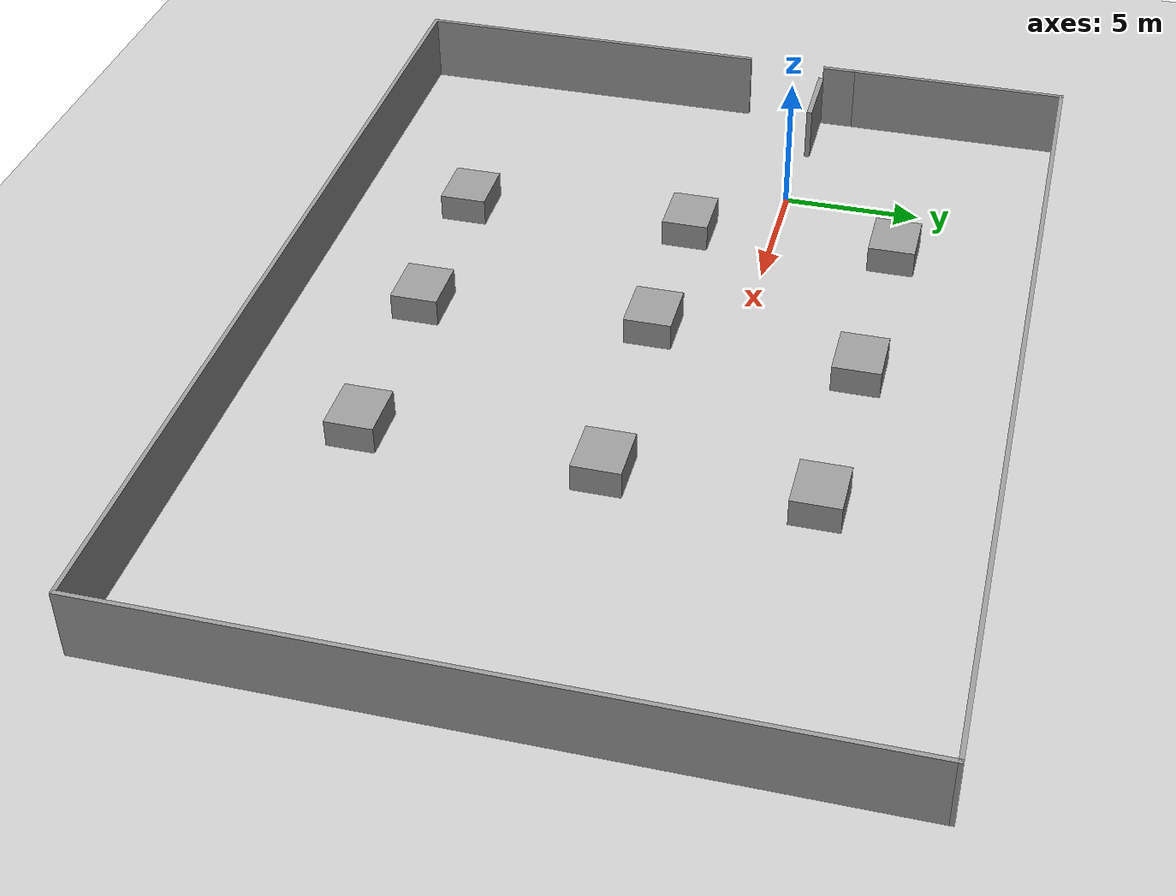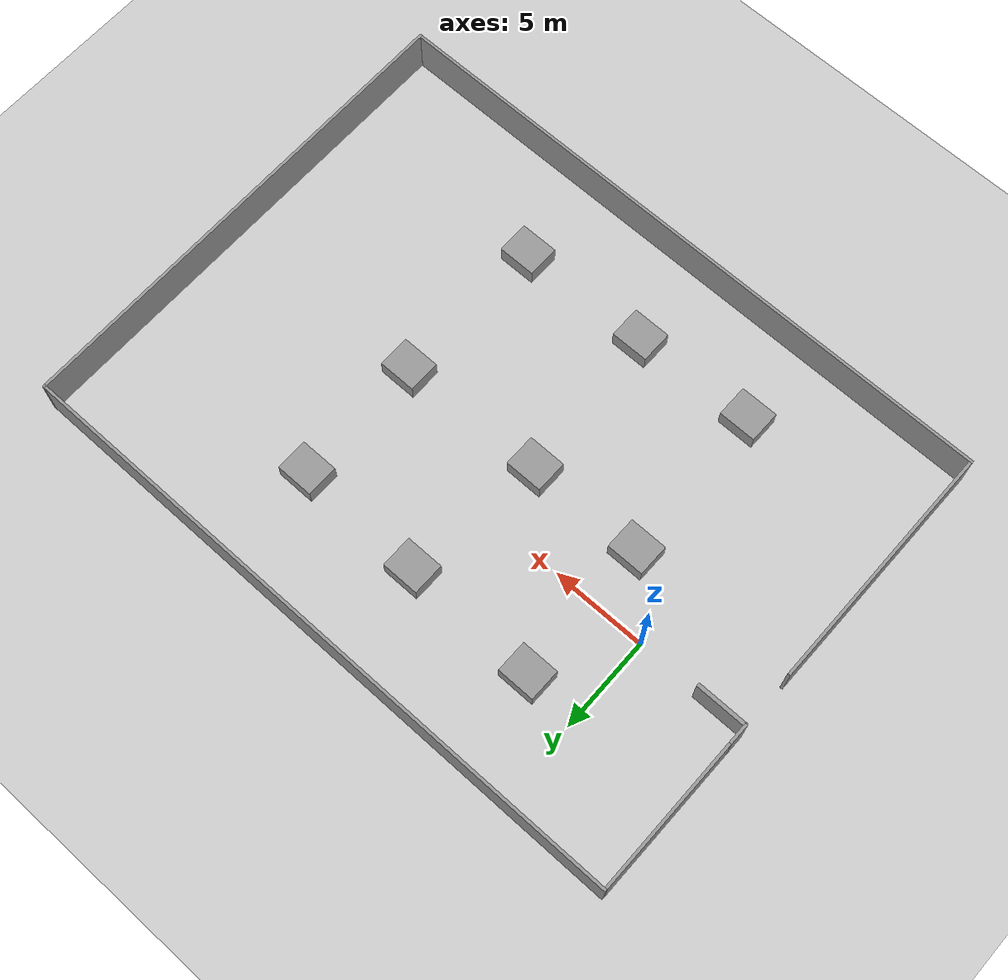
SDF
<sdf version="1.7">
 <world name="default">
  <light name="sun" type="directional">
   <pose>0 0 10 0 -0 0</pose>
   <diffuse>0.8 0.8 0.8 1</diffuse>
   <specular>0.2 0.2 0.2 1</specular>
   <attenuation>
    <range>1000</range>
    <constant>0.9</constant>
    <linear>0.01</linear>
    <quadratic>0.001</quadratic>
   </attenuation>
   <direction>-0.5 0.1 -0.9</direction>
   <spot><inner_angle>0</inner_angle><outer_angle>0</outer_angle><falloff>0</falloff></spot>
  </light>
  <model name="ground_plane">
   <static>1</static>
   <link name="link">
    <collision name="collision">
     <geometry><plane><normal>0 0 1</normal><size>100 100</size></plane></geometry>
     <surface>
      <contact><collide_bitmask>65535</collide_bitmask></contact>
      <friction><ode><mu>100</mu><mu2>50</mu2></ode></friction>
     </surface>
    </collision>
    <visual name="visual">
     <cast_shadows>0</cast_shadows>
     <geometry><plane><normal>0 0 1</normal><size>100 100</size></plane></geometry>
     <material>
      <script><uri>file://media/materials/scripts/gazebo.material</uri><name>Gazebo/Grey</name></script>
     </material>
    </visual>
   </link>
  </model>
  <gravity>0 0 -9.8</gravity>
  <magnetic_field>6e-06 2.3e-05 -4.2e-05</magnetic_field>
  <atmosphere type="adiabatic"/>
  <physics type="ode">
   <max_step_size>0.001</max_step_size>
   <real_time_factor>1</real_time_factor>
   <real_time_update_rate>1000</real_time_update_rate>
  </physics>
  <scene><ambient>0.4 0.4 0.4 1</ambient><background>0.7 0.7 0.7 1</background><shadows>1</shadows></scene>
  <audio><device>default</device></audio>
  <spherical_coordinates>
   <surface_model>EARTH_WGS84</surface_model>
   <latitude_deg>0</latitude_deg>
   <longitude_deg>0</longitude_deg>
   <elevation>0</elevation>
   <heading_deg>0</heading_deg>
  </spherical_coordinates>
  <model name="sample_room">
   <pose>11.0119 -3.11246 0 0 -0 0</pose>
   <link name="Door_0">
    <collision name="Door_0_Collision">
     <geometry><box><size>2.717 0.2 2</size></box></geometry>
     <pose>0 0 1 0 -0 0</pose>
    </collision>
    <visual name="Door_0_Visual">
     <pose>0 0 1 0 -0 0</pose>
     <geometry><box><size>2.717 0.2 2</size></box></geometry>
     <material>
      <script><uri>file://media/materials/scripts/gazebo.material</uri><name>Gazebo/Grey</name></script>
     </material>
    </visual>
    <pose>-15.5808 3.32304 0 0 -0 0</pose>
   </link>
   <link name="Wall_12">
    <collision name="Wall_12_Collision">
     <geometry><box><size>13.25 0.15 2.5</size></box></geometry>
     <pose>0 0 1.25 0 -0 0</pose>
    </collision>
    <visual name="Wall_12_Visual">
     <pose>0 0 1.25 0 -0 0</pose>
     <geometry><box><size>13.25 0.15 2.5</size></box></geometry>
     <material>
      <script><uri>file://media/materials/scripts/gazebo.material</uri><name>Gazebo/Grey</name></script>
      <ambient>1 1 1 1</ambient>
     </material>
     <meta><layer>0</layer></meta>
    </visual>
    <pose>-16.925 -6.125 0 0 -0 -1.5708</pose>
   </link>
   <link name="Wall_13">
    <collision name="Wall_13_Collision">
     <geometry><box><size>34 0.15 2.5</size></box></geometry>
     <pose>0 0 1.25 0 -0 0</pose>
    </collision>
    <visual name="Wall_13_Visual">
     <pose>0 0 1.25 0 -0 0</pose>
     <geometry><box><size>34 0.15 2.5</size></box></geometry>
     <material>
      <script><uri>file://media/materials/scripts/gazebo.material</uri><name>Gazebo/Grey</name></script>
      <ambient>1 1 1 1</ambient>
     </material>
     <meta><layer>0</layer></meta>
    </visual>
    <pose>-1e-06 -12.675 0 0 -0 0</pose>
   </link>
   <link name="Wall_14">
    <collision name="Wall_14_Collision">
     <geometry><box><size>25.5 0.15 2.5</size></box></geometry>
     <pose>0 0 1.25 0 -0 0</pose>
    </collision>
    <visual name="Wall_14_Visual">
     <pose>0 0 1.25 0 -0 0</pose>
     <geometry><box><size>25.5 0.15 2.5</size></box></geometry>
     <material>
      <script><uri>file://media/materials/scripts/gazebo.material</uri><name>Gazebo/Grey</name></script>
      <ambient>1 1 1 1</ambient>
     </material>
     <meta><layer>0</layer></meta>
    </visual>
    <pose>16.925 0 0 0 -0 1.5708</pose>
   </link>
   <link name="Wall_15">
    <collision name="Wall_15_Collision">
     <geometry><box><size>34 0.15 2.5</size></box></geometry>
     <pose>0 0 1.25 0 -0 0</pose>
    </collision>
    <visual name="Wall_15_Visual">
     <pose>0 0 1.25 0 -0 0</pose>
     <geometry><box><size>34 0.15 2.5</size></box></geometry>
     <material>
      <script><uri>file://media/materials/scripts/gazebo.material</uri><name>Gazebo/Grey</name></script>
      <ambient>1 1 1 1</ambient>
     </material>
     <meta><layer>0</layer></meta>
    </visual>
    <pose>-1e-06 12.675 0 0 -0 3.14159</pose>
   </link>
   <link name="Wall_16">
    <collision name="Wall_16_Collision">
     <geometry><box><size>8.25 0.15 2.5</size></box></geometry>
     <pose>0 0 1.25 0 -0 0</pose>
    </collision>
    <visual name="Wall_16_Visual">
     <pose>0 0 1.25 0 -0 0</pose>
     <geometry><box><size>8.25 0.15 2.5</size></box></geometry>
     <material>
      <script><uri>file://media/materials/scripts/gazebo.material</uri><name>Gazebo/Grey</name></script>
      <ambient>1 1 1 1</ambient>
     </material>
     <meta><layer>0</layer></meta>
    </visual>
    <pose>-16.925 8.625 0 0 -0 -1.5708</pose>
   </link>
   <link name="Wall_17">
    <collision name="Wall_17_Collision">
     <geometry><box><size>1.25 0.15 2.5</size></box></geometry>
     <pose>0 0 1.25 0 -0 0</pose>
    </collision>
    <visual name="Wall_17_Visual">
     <pose>0 0 1.25 0 -0 0</pose>
     <geometry><box><size>1.25 0.15 2.5</size></box></geometry>
     <material>
      <script><uri>file://media/materials/scripts/gazebo.material</uri><name>Gazebo/Grey</name></script>
      <ambient>1 1 1 1</ambient>
     </material>
     <meta><layer>0</layer></meta>
    </visual>
    <pose>-16.925 4.025 0 0 -0 -1.5708</pose>
   </link>
   <static>1</static>
  </model>
  <model name="sample_room_0">
   <link name="link_0">
    <inertial>
     <mass>3.34182</mass>
     <inertia><ixx>1.06479</ixx><ixy>0</ixy><ixz>0</ixz><iyy>1.37995</iyy><iyz>0</iyz><izz>1.88777</izz></inertia>
    </inertial>
    <pose>-6.45144 -8.16118 0 0 -0 0</pose>
    <visual name="visual">
     <geometry><box><size>1.98877 1.68033 1</size></box></geometry>
     <material>
      <lighting>1</lighting>
      <script><uri>file://media/materials/scripts/gazebo.material</uri><name>Gazebo/Grey</name></script>
      <shader type="pixel"/>
     </material>
    </visual>
    <collision name="collision">
     <geometry><box><size>1.98877 1.68033 1</size></box></geometry>
     <surface>
      <friction>
       <ode><mu>1</mu><mu2>1</mu2><fdir1>0 0 0</fdir1><slip1>0</slip1><slip2>0</slip2></ode>
       <torsional>
        <coefficient>1</coefficient>
        <patch_radius>0</patch_radius>
        <surface_radius>0</surface_radius>
        <use_patch_radius>1</use_patch_radius>
        <ode><slip>0</slip></ode>
       </torsional>
      </friction>
      <bounce><restitution_coefficient>0</restitution_coefficient><threshold>1e+06</threshold></bounce>
      <contact>
       <collide_without_contact>0</collide_without_contact>
       <collide_without_contact_bitmask>1</collide_without_contact_bitmask>
       <collide_bitmask>1</collide_bitmask>
       <ode>
        <soft_cfm>0</soft_cfm>
        <soft_erp>0.2</soft_erp>
        <kp>1e+13</kp>
        <kd>1</kd>
        <max_vel>0.01</max_vel>
        <min_depth>0</min_depth>
       </ode>
       <bullet>
        <split_impulse>1</split_impulse>
        <split_impulse_penetration_threshold>-0.01</split_impulse_penetration_threshold>
        <soft_cfm>0</soft_cfm>
        <soft_erp>0.2</soft_erp>
        <kp>1e+13</kp>
        <kd>1</kd>
       </bullet>
      </contact>
     </surface>
    </collision>
   </link>
   <link name="link_0_clone">
    <inertial>
     <mass>3.34182</mass>
     <inertia><ixx>1.06479</ixx><ixy>0</ixy><ixz>0</ixz><iyy>1.37995</iyy><iyz>0</iyz><izz>1.88777</izz></inertia>
    </inertial>
    <pose>-0.111788 -7.9194 0 0 -0 0</pose>
    <visual name="visual">
     <geometry><box><size>1.98877 1.68033 1</size></box></geometry>
     <material>
      <lighting>1</lighting>
      <script><uri>file://media/materials/scripts/gazebo.material</uri><name>Gazebo/Grey</name></script>
      <shader type="pixel"/>
     </material>
    </visual>
    <collision name="collision">
     <geometry><box><size>1.98877 1.68033 1</size></box></geometry>
     <surface>
      <friction>
       <ode><mu>1</mu><mu2>1</mu2><fdir1>0 0 0</fdir1><slip1>0</slip1><slip2>0</slip2></ode>
       <torsional>
        <coefficient>1</coefficient>
        <patch_radius>0</patch_radius>
        <surface_radius>0</surface_radius>
        <use_patch_radius>1</use_patch_radius>
        <ode><slip>0</slip></ode>
       </torsional>
      </friction>
      <bounce><restitution_coefficient>0</restitution_coefficient><threshold>1e+06</threshold></bounce>
      <contact>
       <collide_without_contact>0</collide_without_contact>
       <collide_without_contact_bitmask>1</collide_without_contact_bitmask>
       <collide_bitmask>1</collide_bitmask>
       <ode>
        <soft_cfm>0</soft_cfm>
        <soft_erp>0.2</soft_erp>
        <kp>1e+13</kp>
        <kd>1</kd>
        <max_vel>0.01</max_vel>
        <min_depth>0</min_depth>
       </ode>
       <bullet>
        <split_impulse>1</split_impulse>
        <split_impulse_penetration_threshold>-0.01</split_impulse_penetration_threshold>
        <soft_cfm>0</soft_cfm>
        <soft_erp>0.2</soft_erp>
        <kp>1e+13</kp>
        <kd>1</kd>
       </bullet>
      </contact>
     </surface>
    </collision>
   </link>
   <link name="link_0_clone_0">
    <inertial>
     <mass>3.34182</mass>
     <inertia><ixx>1.06479</ixx><ixy>0</ixy><ixz>0</ixz><iyy>1.37995</iyy><iyz>0</iyz><izz>1.88777</izz></inertia>
    </inertial>
    <pose>6.83263 -7.7383 0 0 -0 0</pose>
    <visual name="visual">
     <geometry><box><size>1.98877 1.68033 1</size></box></geometry>
     <material>
      <lighting>1</lighting>
      <script><uri>file://media/materials/scripts/gazebo.material</uri><name>Gazebo/Grey</name></script>
      <shader type="pixel"/>
     </material>
    </visual>
    <collision name="collision">
     <geometry><box><size>1.98877 1.68033 1</size></box></geometry>
     <surface>
      <friction>
       <ode><mu>1</mu><mu2>1</mu2><fdir1>0 0 0</fdir1><slip1>0</slip1><slip2>0</slip2></ode>
       <torsional>
        <coefficient>1</coefficient>
        <patch_radius>0</patch_radius>
        <surface_radius>0</surface_radius>
        <use_patch_radius>1</use_patch_radius>
        <ode><slip>0</slip></ode>
       </torsional>
      </friction>
      <bounce><restitution_coefficient>0</restitution_coefficient><threshold>1e+06</threshold></bounce>
      <contact>
       <collide_without_contact>0</collide_without_contact>
       <collide_without_contact_bitmask>1</collide_without_contact_bitmask>
       <collide_bitmask>1</collide_bitmask>
       <ode>
        <soft_cfm>0</soft_cfm>
        <soft_erp>0.2</soft_erp>
        <kp>1e+13</kp>
        <kd>1</kd>
        <max_vel>0.01</max_vel>
        <min_depth>0</min_depth>
       </ode>
       <bullet>
        <split_impulse>1</split_impulse>
        <split_impulse_penetration_threshold>-0.01</split_impulse_penetration_threshold>
        <soft_cfm>0</soft_cfm>
        <soft_erp>0.2</soft_erp>
        <kp>1e+13</kp>
        <kd>1</kd>
       </bullet>
      </contact>
     </surface>
    </collision>
   </link>
   <link name="link_0_clone_1">
    <inertial>
     <mass>3.34182</mass>
     <inertia><ixx>1.06479</ixx><ixy>0</ixy><ixz>0</ixz><iyy>1.37995</iyy><iyz>0</iyz><izz>1.88777</izz></inertia>
    </inertial>
    <pose>-6.77721 0.220051 0 0 -0 0</pose>
    <visual name="visual">
     <geometry><box><size>1.98877 1.68033 1</size></box></geometry>
     <material>
      <lighting>1</lighting>
      <script><uri>file://media/materials/scripts/gazebo.material</uri><name>Gazebo/Grey</name></script>
      <shader type="pixel"/>
     </material>
    </visual>
    <collision name="collision">
     <geometry><box><size>1.98877 1.68033 1</size></box></geometry>
     <surface>
      <friction>
       <ode><mu>1</mu><mu2>1</mu2><fdir1>0 0 0</fdir1><slip1>0</slip1><slip2>0</slip2></ode>
       <torsional>
        <coefficient>1</coefficient>
        <patch_radius>0</patch_radius>
        <surface_radius>0</surface_radius>
        <use_patch_radius>1</use_patch_radius>
        <ode><slip>0</slip></ode>
       </torsional>
      </friction>
      <bounce><restitution_coefficient>0</restitution_coefficient><threshold>1e+06</threshold></bounce>
      <contact>
       <collide_without_contact>0</collide_without_contact>
       <collide_without_contact_bitmask>1</collide_without_contact_bitmask>
       <collide_bitmask>1</collide_bitmask>
       <ode>
        <soft_cfm>0</soft_cfm>
        <soft_erp>0.2</soft_erp>
        <kp>1e+13</kp>
        <kd>1</kd>
        <max_vel>0.01</max_vel>
        <min_depth>0</min_depth>
       </ode>
       <bullet>
        <split_impulse>1</split_impulse>
        <split_impulse_penetration_threshold>-0.01</split_impulse_penetration_threshold>
        <soft_cfm>0</soft_cfm>
        <soft_erp>0.2</soft_erp>
        <kp>1e+13</kp>
        <kd>1</kd>
       </bullet>
      </contact>
     </surface>
    </collision>
   </link>
   <link name="link_0_clone_2">
    <inertial>
     <mass>3.34182</mass>
     <inertia><ixx>1.06479</ixx><ixy>0</ixy><ixz>0</ixz><iyy>1.37995</iyy><iyz>0</iyz><izz>1.88777</izz></inertia>
    </inertial>
    <pose>-0.71117 0.274181 0 0 -0 0</pose>
    <visual name="visual">
     <geometry><box><size>1.98877 1.68033 1</size></box></geometry>
     <material>
      <lighting>1</lighting>
      <script><uri>file://media/materials/scripts/gazebo.material</uri><name>Gazebo/Grey</name></script>
      <shader type="pixel"/>
     </material>
    </visual>
    <collision name="collision">
     <geometry><box><size>1.98877 1.68033 1</size></box></geometry>
     <surface>
      <friction>
       <ode><mu>1</mu><mu2>1</mu2><fdir1>0 0 0</fdir1><slip1>0</slip1><slip2>0</slip2></ode>
       <torsional>
        <coefficient>1</coefficient>
        <patch_radius>0</patch_radius>
        <surface_radius>0</surface_radius>
        <use_patch_radius>1</use_patch_radius>
        <ode><slip>0</slip></ode>
       </torsional>
      </friction>
      <bounce><restitution_coefficient>0</restitution_coefficient><threshold>1e+06</threshold></bounce>
      <contact>
       <collide_without_contact>0</collide_without_contact>
       <collide_without_contact_bitmask>1</collide_without_contact_bitmask>
       <collide_bitmask>1</collide_bitmask>
       <ode>
        <soft_cfm>0</soft_cfm>
        <soft_erp>0.2</soft_erp>
        <kp>1e+13</kp>
        <kd>1</kd>
        <max_vel>0.01</max_vel>
        <min_depth>0</min_depth>
       </ode>
       <bullet>
        <split_impulse>1</split_impulse>
        <split_impulse_penetration_threshold>-0.01</split_impulse_penetration_threshold>
        <soft_cfm>0</soft_cfm>
        <soft_erp>0.2</soft_erp>
        <kp>1e+13</kp>
        <kd>1</kd>
       </bullet>
      </contact>
     </surface>
    </collision>
   </link>
   <link name="link_0_clone_3">
    <inertial>
     <mass>3.34182</mass>
     <inertia><ixx>1.06479</ixx><ixy>0</ixy><ixz>0</ixz><iyy>1.37995</iyy><iyz>0</iyz><izz>1.88777</izz></inertia>
    </inertial>
    <pose>7.01065 0.493535 0 0 -0 0</pose>
    <visual name="visual">
     <geometry><box><size>1.98877 1.68033 1</size></box></geometry>
     <material>
      <lighting>1</lighting>
      <script><uri>file://media/materials/scripts/gazebo.material</uri><name>Gazebo/Grey</name></script>
      <shader type="pixel"/>
     </material>
    </visual>
    <collision name="collision">
     <geometry><box><size>1.98877 1.68033 1</size></box></geometry>
     <surface>
      <friction>
       <ode><mu>1</mu><mu2>1</mu2><fdir1>0 0 0</fdir1><slip1>0</slip1><slip2>0</slip2></ode>
       <torsional>
        <coefficient>1</coefficient>
        <patch_radius>0</patch_radius>
        <surface_radius>0</surface_radius>
        <use_patch_radius>1</use_patch_radius>
        <ode><slip>0</slip></ode>
       </torsional>
      </friction>
      <bounce><restitution_coefficient>0</restitution_coefficient><threshold>1e+06</threshold></bounce>
      <contact>
       <collide_without_contact>0</collide_without_contact>
       <collide_without_contact_bitmask>1</collide_without_contact_bitmask>
       <collide_bitmask>1</collide_bitmask>
       <ode>
        <soft_cfm>0</soft_cfm>
        <soft_erp>0.2</soft_erp>
        <kp>1e+13</kp>
        <kd>1</kd>
        <max_vel>0.01</max_vel>
        <min_depth>0</min_depth>
       </ode>
       <bullet>
        <split_impulse>1</split_impulse>
        <split_impulse_penetration_threshold>-0.01</split_impulse_penetration_threshold>
        <soft_cfm>0</soft_cfm>
        <soft_erp>0.2</soft_erp>
        <kp>1e+13</kp>
        <kd>1</kd>
       </bullet>
      </contact>
     </surface>
    </collision>
   </link>
   <link name="link_0_clone_4">
    <inertial>
     <mass>3.34182</mass>
     <inertia><ixx>1.06479</ixx><ixy>0</ixy><ixz>0</ixz><iyy>1.37995</iyy><iyz>0</iyz><izz>1.88777</izz></inertia>
    </inertial>
    <pose>-6.91648 7.78013 0 0 -0 0</pose>
    <visual name="visual">
     <geometry><box><size>1.98877 1.68033 1</size></box></geometry>
     <material>
      <lighting>1</lighting>
      <script><uri>file://media/materials/scripts/gazebo.material</uri><name>Gazebo/Grey</name></script>
      <shader type="pixel"/>
     </material>
    </visual>
    <collision name="collision">
     <geometry><box><size>1.98877 1.68033 1</size></box></geometry>
     <surface>
      <friction>
       <ode><mu>1</mu><mu2>1</mu2><fdir1>0 0 0</fdir1><slip1>0</slip1><slip2>0</slip2></ode>
       <torsional>
        <coefficient>1</coefficient>
        <patch_radius>0</patch_radius>
        <surface_radius>0</surface_radius>
        <use_patch_radius>1</use_patch_radius>
        <ode><slip>0</slip></ode>
       </torsional>
      </friction>
      <bounce><restitution_coefficient>0</restitution_coefficient><threshold>1e+06</threshold></bounce>
      <contact>
       <collide_without_contact>0</collide_without_contact>
       <collide_without_contact_bitmask>1</collide_without_contact_bitmask>
       <collide_bitmask>1</collide_bitmask>
       <ode>
        <soft_cfm>0</soft_cfm>
        <soft_erp>0.2</soft_erp>
        <kp>1e+13</kp>
        <kd>1</kd>
        <max_vel>0.01</max_vel>
        <min_depth>0</min_depth>
       </ode>
       <bullet>
        <split_impulse>1</split_impulse>
        <split_impulse_penetration_threshold>-0.01</split_impulse_penetration_threshold>
        <soft_cfm>0</soft_cfm>
        <soft_erp>0.2</soft_erp>
        <kp>1e+13</kp>
        <kd>1</kd>
       </bullet>
      </contact>
     </surface>
    </collision>
   </link>
   <link name="link_0_clone_5">
    <inertial>
     <mass>3.34182</mass>
     <inertia><ixx>1.06479</ixx><ixy>0</ixy><ixz>0</ixz><iyy>1.37995</iyy><iyz>0</iyz><izz>1.88777</izz></inertia>
    </inertial>
    <pose>0.16812 7.6223 0 0 -0 0</pose>
    <visual name="visual">
     <geometry><box><size>1.98877 1.68033 1</size></box></geometry>
     <material>
      <lighting>1</lighting>
      <script><uri>file://media/materials/scripts/gazebo.material</uri><name>Gazebo/Grey</name></script>
      <shader type="pixel"/>
     </material>
    </visual>
    <collision name="collision">
     <geometry><box><size>1.98877 1.68033 1</size></box></geometry>
     <surface>
      <friction>
       <ode><mu>1</mu><mu2>1</mu2><fdir1>0 0 0</fdir1><slip1>0</slip1><slip2>0</slip2></ode>
       <torsional>
        <coefficient>1</coefficient>
        <patch_radius>0</patch_radius>
        <surface_radius>0</surface_radius>
        <use_patch_radius>1</use_patch_radius>
        <ode><slip>0</slip></ode>
       </torsional>
      </friction>
      <bounce><restitution_coefficient>0</restitution_coefficient><threshold>1e+06</threshold></bounce>
      <contact>
       <collide_without_contact>0</collide_without_contact>
       <collide_without_contact_bitmask>1</collide_without_contact_bitmask>
       <collide_bitmask>1</collide_bitmask>
       <ode>
        <soft_cfm>0</soft_cfm>
        <soft_erp>0.2</soft_erp>
        <kp>1e+13</kp>
        <kd>1</kd>
        <max_vel>0.01</max_vel>
        <min_depth>0</min_depth>
       </ode>
       <bullet>
        <split_impulse>1</split_impulse>
        <split_impulse_penetration_threshold>-0.01</split_impulse_penetration_threshold>
        <soft_cfm>0</soft_cfm>
        <soft_erp>0.2</soft_erp>
        <kp>1e+13</kp>
        <kd>1</kd>
       </bullet>
      </contact>
     </surface>
    </collision>
   </link>
   <link name="link_0_clone_6">
    <inertial>
     <mass>3.34182</mass>
     <inertia><ixx>1.06479</ixx><ixy>0</ixy><ixz>0</ixz><iyy>1.37995</iyy><iyz>0</iyz><izz>1.88777</izz></inertia>
    </inertial>
    <pose>6.95675 7.42864 0 0 -0 0</pose>
    <visual name="visual">
     <geometry><box><size>1.98877 1.68033 1</size></box></geometry>
     <material>
      <lighting>1</lighting>
      <script><uri>file://media/materials/scripts/gazebo.material</uri><name>Gazebo/Grey</name></script>
      <shader type="pixel"/>
     </material>
    </visual>
    <collision name="collision">
     <geometry><box><size>1.98877 1.68033 1</size></box></geometry>
     <surface>
      <friction>
       <ode><mu>1</mu><mu2>1</mu2><fdir1>0 0 0</fdir1><slip1>0</slip1><slip2>0</slip2></ode>
       <torsional>
        <coefficient>1</coefficient>
        <patch_radius>0</patch_radius>
        <surface_radius>0</surface_radius>
        <use_patch_radius>1</use_patch_radius>
        <ode><slip>0</slip></ode>
       </torsional>
      </friction>
      <bounce><restitution_coefficient>0</restitution_coefficient><threshold>1e+06</threshold></bounce>
      <contact>
       <collide_without_contact>0</collide_without_contact>
       <collide_without_contact_bitmask>1</collide_without_contact_bitmask>
       <collide_bitmask>1</collide_bitmask>
       <ode>
        <soft_cfm>0</soft_cfm>
        <soft_erp>0.2</soft_erp>
        <kp>1e+13</kp>
        <kd>1</kd>
        <max_vel>0.01</max_vel>
        <min_depth>0</min_depth>
       </ode>
       <bullet>
        <split_impulse>1</split_impulse>
        <split_impulse_penetration_threshold>-0.01</split_impulse_penetration_threshold>
        <soft_cfm>0</soft_cfm>
        <soft_erp>0.2</soft_erp>
        <kp>1e+13</kp>
        <kd>1</kd>
       </bullet>
      </contact>
     </surface>
    </collision>
   </link>
   <static>0</static>
   <pose>9.73778 -3.31072 0.5 0 -0 0</pose>
  </model>
 </world>
</sdf>
